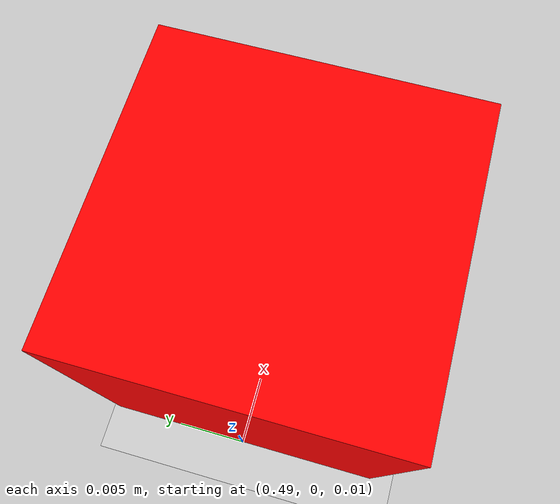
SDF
<?xml version="1.0"?>
<sdf version="1.9">
  <world name="empty_with_box">

    <physics name="1ms" type="bullet">
      <max_step_size>0.001</max_step_size>
      <real_time_factor>1.0</real_time_factor>
    </physics>

    <plugin filename="gz-sim-physics-system"
            name="gz::sim::systems::Physics">
        <engine>
            <filename>gz-physics-bullet-featherstone-plugin</filename>
        </engine>
    </plugin>
    <plugin filename="gz-sim-user-commands-system"
            name="gz::sim::systems::UserCommands"/>
    <plugin filename="gz-sim-scene-broadcaster-system"
            name="gz::sim::systems::SceneBroadcaster"/>
    <plugin filename="gz-sim-contact-system"
            name="gz::sim::systems::Contact"/>

    <light name="sun" type="directional">
      <cast_shadows>true</cast_shadows>
      <pose>0 0 10 0 0 0</pose>
      <diffuse>0.8 0.8 0.8 1</diffuse>
      <specular>0.2 0.2 0.2 1</specular>
      <direction>-0.5 0.1 -0.9</direction>
    </light>

    <model name="ground_plane">
      <static>true</static>
      <link name="link">
        <collision name="collision">
          <geometry><plane><normal>0 0 1</normal></plane></geometry>
        </collision>
        <visual name="visual">
          <geometry><plane><normal>0 0 1</normal><size>100 100</size></plane></geometry>
          <material>
            <ambient>0.8 0.8 0.8 1</ambient>
            <diffuse>0.8 0.8 0.8 1</diffuse>
          </material>
        </visual>
      </link>
    </model>

    <!-- include the cube model -->
    <include>
      <uri>package://youbot_gz/world/cube</uri>
    </include>

    <!-- drop zone marker (static, just visual) -->
    <model name="drop_zone">
      <static>true</static>
      <pose>0.0 -0.5 0.001 0 0 0</pose>
      <link name="link">
        <visual name="visual">
          <geometry><box><size>0.15 0.15 0.002</size></box></geometry>
          <material>
            <ambient>0 1 0 0.5</ambient>
            <diffuse>0 1 0 0.5</diffuse>
          </material>
        </visual>
      </link>
    </model>

  </world>
</sdf>

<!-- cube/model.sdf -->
<!-- the cube that the youbot will pick & place -->

<?xml version="1.0"?>
<sdf version="1.9">
  <model name="cube">
    <pose>0.5 0.0 0.02 0 0 0</pose>
    <link name="link">
      <inertial>
        <mass>0.1</mass>
        <inertia>
          <ixx>1.67e-5</ixx><iyy>1.67e-5</iyy><izz>1.67e-5</izz>
        </inertia>
      </inertial>
      <collision name="collision">
        <geometry><box><size>0.02 0.02 0.02</size></box></geometry>
        <surface>
          <friction><ode><mu>1.0</mu><mu2>1.0</mu2></ode></friction>
        </surface>
      </collision>
      <visual name="visual">
        <geometry><box><size>0.02 0.02 0.02</size></box></geometry>
        <material>
          <ambient>1 0 0 1</ambient>
          <diffuse>1 0 0 1</diffuse>
        </material>
      </visual>
    </link>
  </model>
</sdf>
